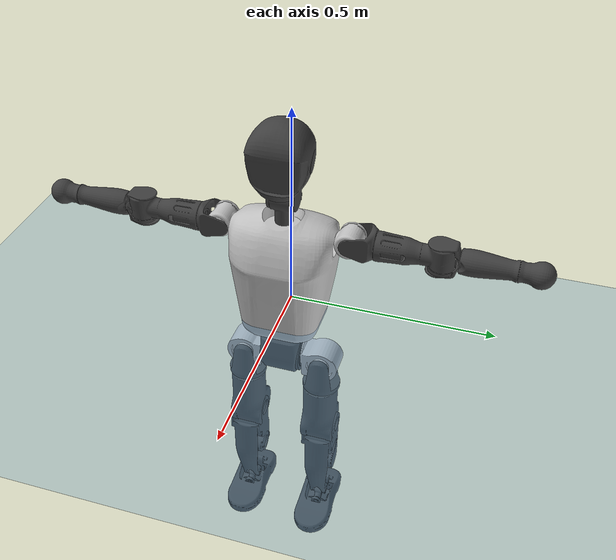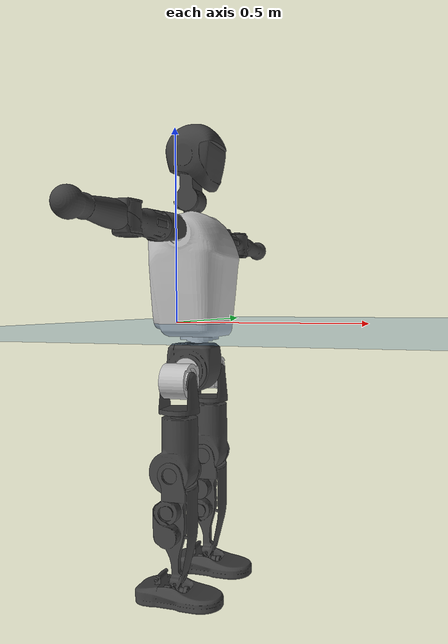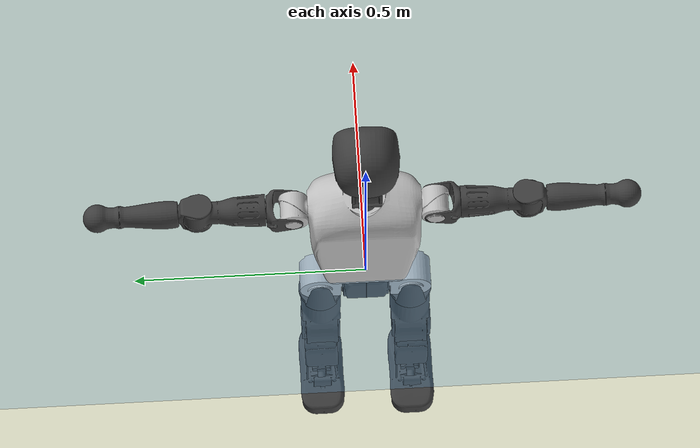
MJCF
<mujoco model="T1">
  <compiler angle="radian" assetdir="assets" balanceinertia="true" inertiafromgeom="false"/>

  <option timestep="0.005" density="1.2" viscosity="2e-05"/>

  <size nkey="1"/>

  <visual>
    <quality shadowsize="8192"/>
    <map shadowclip="0.5"/>
  </visual>

  <default>
    <default class="/">
      <joint armature="0.01" damping="0.01" frictionloss="0.1"/>
      <geom contype="0" conaffinity="0" group="1" solref="-1000 -80"/>
      <site size="0.01 0.005 0.005" group="5"/>
      <general forcelimited="true" biastype="affine" gainprm="25" biasprm="0 -25 -0.6"/>
      <default class="t1">
        <geom rgba="0.25 0.25 0.25 1"/>
        <default class="visual">
          <geom type="mesh" group="2"/>
        </default>
        <default class="collision">
          <geom group="3"/>
        </default>
        <default class="foot">
          <geom size="0.1115 0.05 0.015" type="box" condim="6" group="4" priority="1" solimp="0.015 1 0.015"/>
        </default>
        <default class="reward_collision_sphere">
          <geom group="5" rgba="1 0 0 1"/>
        </default>
      </default>
    </default>
  </default>

  <asset>
    <texture type="skybox" colorspace="auto" name="//unnamed_texture_0" builtin="gradient" rgb1="0.95 0.95 0.95" rgb2="0.95 0.95 0.95" width="100" height="600"/>
    <texture type="2d" colorspace="auto" name="texplane" builtin="checker" rgb1="0.345 0.575 0.748" rgb2="0.345 0.575 0.748" markrgb="1 1 1" width="512" height="512"/>
    <material name="MatPlane" class="/" texture="texplane" texuniform="true" texrepeat="2 2" specular="0.9"/>
    <mesh name="Trunk" class="/" file="Trunk.stl"/>
    <mesh name="H1" class="/" file="H1.stl"/>
    <mesh name="H2" class="/" file="H2.stl"/>
    <mesh name="AL1" class="/" file="AL1.stl"/>
    <mesh name="AL2" class="/" file="AL2.stl"/>
    <mesh name="AL3" class="/" file="AL3.stl"/>
    <mesh name="left_hand_link" class="/" file="left_hand_link.stl"/>
    <mesh name="AR1" class="/" file="AR1.stl"/>
    <mesh name="AR2" class="/" file="AR2.stl"/>
    <mesh name="AR3" class="/" file="AR3.stl"/>
    <mesh name="right_hand_link" class="/" file="right_hand_link.stl"/>
    <mesh name="Waist" class="/" file="Waist.stl"/>
    <mesh name="Hip_Pitch_Left" class="/" file="Hip_Pitch_Left.stl"/>
    <mesh name="Hip_Roll_Left" class="/" file="Hip_Roll_Left.stl"/>
    <mesh name="Hip_Yaw_Left" class="/" file="Hip_Yaw_Left.stl"/>
    <mesh name="Shank_Left" class="/" file="Shank_Left.stl"/>
    <mesh name="Ankle_Cross_Left" class="/" file="Ankle_Cross_Left.stl"/>
    <mesh name="left_foot_link" class="/" file="left_foot_link.stl"/>
    <mesh name="Hip_Pitch_Right" class="/" file="Hip_Pitch_Right.stl"/>
    <mesh name="Hip_Roll_Right" class="/" file="Hip_Roll_Right.stl"/>
    <mesh name="Hip_Yaw_Right" class="/" file="Hip_Yaw_Right.stl"/>
    <mesh name="Shank_Right" class="/" file="Shank_Right.stl"/>
    <mesh name="Ankle_Cross_Right" class="/" file="Ankle_Cross_Right.stl"/>
    <mesh name="right_foot_link" class="/" file="right_foot_link.stl"/>
  </asset>

  <worldbody>
    <geom name="floor" class="/" size="100 100 0.125" type="plane" group="0" material="MatPlane"/>
    <light name="toplight_shadow" class="/" pos="0 0 5" dir="0.0990148 0.0990148 -0.990148" type="directional" ambient="0.04 0.04 0.04" diffuse="0.55 0.55 0.55" specular="0.12 0.12 0.12"/>
    <light name="toplight_fill" class="/" pos="0 0 5" dir="0.0990148 0.0990148 -0.990148" type="directional" castshadow="false" ambient="0.04 0.04 0.04" diffuse="0.3 0.3 0.3" specular="0.08 0.08 0.08"/>
    <body name="trunk" childclass="t1" pos="0.00153634 -0.00033723 -0.000396214" quat="1 -0.000255755 -0.000376135 -0.000192557">
      <inertial pos="0.0418569 -0.000232602 0.108485" quat="0.999955 0.00306273 -0.00882774 0.00145331" mass="9.50319" diaginertia="0.0251495 0.0610292 0.0676208"/>
      <joint name="//unnamed_joint_0" type="free" armature="0" damping="0" frictionloss="0"/>
      <geom name="//unnamed_geom_1" class="visual" rgba="0.76 0.76 0.76 1" mesh="Trunk"/>
      <geom name="//unnamed_geom_2" class="collision" size="0.0689737 0.0919649 0.137947" pos="0.0460279 0 0.124433" type="box"/>
      <geom name="//unnamed_geom_3" class="reward_collision_sphere" size="0.10576" pos="0.0460279 0 0.103694"/>
      <geom name="//unnamed_geom_4" class="reward_collision_sphere" size="0.0137947" pos="0.0460279 0.0811643 0"/>
      <geom name="//unnamed_geom_5" class="reward_collision_sphere" size="0.0137947" pos="0.0460279 -0.0811643 0"/>
      <geom name="//unnamed_geom_6" class="reward_collision_sphere" size="0.0137947" pos="0.0460279 0.102172 0.186649"/>
      <geom name="//unnamed_geom_7" class="reward_collision_sphere" size="0.0137947" pos="0.0460279 -0.102172 0.186649"/>
      <site name="imu" pos="-0.0133588 0.000168891 0.00970605" size="0.00919649"/>
      <camera name="track" pos="0 -1.90975 0" quat="0.707107 0.707107 0 0" mode="trackcom"/>
      <camera name="ego_camera" pos="0.0935902 0 0.435515" quat="-0.5 -0.5 0.5 0.5"/>
      <body name="H1" pos="0.0449623 -0.00293882 0.249133" quat="1 -0.000410092 0.000355559 -7.2344e-05">
        <inertial pos="-0.00250146 -0.00215591 0.0591805" quat="0.757541 -0.0109917 -0.00712826 0.652656" mass="0.353083" diaginertia="6.42521e-05 0.000170558 0.00017819"/>
        <joint name="AAHead_yaw" pos="0 0 0" axis="-0.000404455 0.0136434 0.999907" range="-1.58053 1.55813" armature="0.0102493" damping="0.00596474" frictionloss="0.0957037"/>
        <geom name="//unnamed_geom_8" class="visual" mesh="H1"/>
        <body name="H2" pos="-0.00137417 -0.000544094 0.0639195" quat="0.999999 -0.000364904 0.000727207 -0.000759034">
          <inertial pos="0.00545989 -0.00171229 0.102026" quat="0.988195 0.104541 -0.0795614 -0.0788212" mass="0.510803" diaginertia="0.00054893 0.00155089 0.00210651"/>
          <joint name="Head_pitch" pos="0 0 0" axis="0.000239112 -1 -0.00010108" range="-1.2422 0.347957" armature="0.00988761" damping="0.00980801" frictionloss="0.0923365"/>
          <geom name="//unnamed_geom_9" class="visual" mesh="H2"/>
          <geom name="//unnamed_geom_10" class="collision" size="0.0735719" pos="0.00767132 0 0.114063"/>
          <geom name="//unnamed_geom_11" class="reward_collision_sphere" size="0.0827684" pos="0.0153426 0 0.103694"/>
        </body>
      </body>
      <body name="AL1" pos="0.0456095 0.104831 0.228389" quat="1 1.03302e-05 0.000467416 7.68361e-06">
        <inertial pos="-0.00311515 0.045495 -0.00217768" quat="0.504162 0.496552 -0.507393 0.491742" mass="0.418843" diaginertia="0.000372151 0.00104932 0.000352192"/>
        <joint name="Left_Shoulder_Pitch" pos="0 0 0" axis="-0.00449826 0.999978 0.00492313" stiffness="0.0113957" range="-3.30348 1.21626" armature="0.00985242" damping="0.00590894" frictionloss="0.0840699"/>
        <geom name="//unnamed_geom_12" class="visual" rgba="0.76 0.76 0.76 1" mesh="AL1"/>
        <body name="AL2" pos="-0.00091842 0.0482681 0.00163927" quat="1 5.02886e-05 -5.42311e-05 1.65123e-05">
          <inertial pos="0.0030549 0.0372697 0.000446785" quat="0.487991 0.511726 -0.488001 0.511718" mass="0.125098" diaginertia="0.000113102 0.000292655 0.000215311"/>
          <joint name="Left_Shoulder_Roll" pos="0 0 0" axis="-1 -3.0699e-05 -0.000564871" range="-1.54135 1.68824" armature="0.00929322" damping="0.019887" frictionloss="0.0937182"/>
          <geom name="//unnamed_geom_13" class="visual" mesh="AL2"/>
          <body name="AL3" pos="0.00328405 0.0575836 -0.000576687" quat="1 3.31237e-05 -0.000721037 0.000293603">
            <inertial pos="7.98273e-05 0.0803183 0.00210162" quat="0.702649 0.711467 -0.00272568 -0.00960187" mass="0.792349" diaginertia="0.00347741 0.0100568 0.00073569"/>
            <joint name="Left_Elbow_Pitch" pos="0 0 0" axis="-0.00231449 -0.999994 -0.00262969" range="-2.27186 2.3157" armature="0.00801767" damping="0.00323078" frictionloss="0.0897058"/>
            <geom name="//unnamed_geom_14" class="visual" mesh="AL3"/>
            <geom name="//unnamed_geom_15" class="collision" size="0.0275895 0.0689737" pos="0 0.0477437 0" quat="0.707105 0.707108 0 0" type="cylinder"/>
            <geom name="//unnamed_geom_16" class="reward_collision_sphere" size="0.0331074"/>
            <body name="left_hand_link" pos="0.000337104 0.140757 -0.000111814" quat="0.999999 -0.0005864 -0.000683528 0.00056934">
              <inertial pos="0.0024559 0.102327 0.00126946" quat="0.709201 0.705005 0.00131897 -9.97094e-05" mass="0.250674" diaginertia="0.00216465 0.00649451 0.000250473"/>
              <joint name="Left_Elbow_Yaw" pos="0 0 0" axis="0.00278006 0.00204146 0.999994" range="-2.43016 -0.023194" armature="0.0102087" damping="0.0217552" frictionloss="0.10211"/>
              <geom name="//unnamed_geom_17" class="visual" mesh="left_hand_link"/>
              <geom name="//unnamed_geom_18" class="collision" size="0.0275895 0.0804693" pos="0 0.124134 0" quat="0.707105 0.707108 0 0" type="cylinder"/>
              <geom name="//unnamed_geom_19" class="reward_collision_sphere" size="0.0459825"/>
              <geom name="//unnamed_geom_20" class="reward_collision_sphere" size="0.0321877" pos="0 0.105036 0"/>
              <geom name="//unnamed_geom_21" class="reward_collision_sphere" size="0.0321877" pos="0 0.205298 0"/>
            </body>
          </body>
        </body>
      </body>
      <body name="AR1" pos="0.0452265 -0.10324 0.226954" quat="1 -0.000452714 0.000762373 -0.000269523">
        <inertial pos="-0.00059133 -0.0439537 8.21435e-05" quat="0.504854 0.495744 -0.504002 0.495319" mass="0.413788" diaginertia="0.000367065 0.0010336 0.000349743"/>
        <joint name="Right_Shoulder_Pitch" pos="0 0 0" axis="-0.00083537 -0.999997 0.0022491" stiffness="0.0128545" range="-1.218 3.29328" armature="0.00988906" damping="0" frictionloss="0.0872483"/>
        <geom name="//unnamed_geom_22" class="visual" rgba="0.76 0.76 0.76 1" mesh="AR1"/>
        <body name="AR2" pos="0.00120738 -0.0438105 -0.00263807" quat="1 9.79203e-05 3.50173e-05 -0.000372034">
          <inertial pos="0.00183093 -0.0341149 -0.00247176" quat="0.511628 0.488139 -0.511842 0.487827" mass="0.127411" diaginertia="0.000108786 0.000270319 0.000215705"/>
          <joint name="Right_Shoulder_Roll" pos="0 0 0" axis="-0.999881 0.0153839 0.000800978" range="-1.68729 1.58509" armature="0.00926809" damping="0.0217427" frictionloss="0.0896465"/>
          <geom name="//unnamed_geom_23" class="visual" mesh="AR2"/>
          <body name="AR3" pos="0.00120321 -0.056625 -0.000444121" quat="1 -0.000100473 -8.39916e-05 6.20264e-05">
            <inertial pos="-0.00301298 -0.0820444 -0.000459391" quat="0.707217 0.706987 -0.000541943 0.00358284" mass="0.790745" diaginertia="0.00344646 0.0101218 0.000766059"/>
            <joint name="Right_Elbow_Pitch" pos="0 0 0" axis="-0.000705831 0.999996 0.00255832" range="-2.27055 2.23796" armature="0.00930607" damping="0.0136275" frictionloss="0.0797085"/>
            <geom name="//unnamed_geom_24" class="visual" mesh="AR3"/>
            <geom name="//unnamed_geom_25" class="collision" size="0.0275895 0.0689737" pos="0 -0.0477437 0" quat="0.707105 0.707108 0 0" type="cylinder"/>
            <geom name="//unnamed_geom_26" class="reward_collision_sphere" size="0.0331074"/>
            <body name="right_hand_link" pos="0.000267079 -0.139219 -0.000721458" quat="1 0.000130917 0.000247389 -0.000229134">
              <inertial pos="0.000596273 -0.10358 0.00334048" quat="0.706262 0.70795 2.96332e-05 -6.37073e-06" mass="0.255759" diaginertia="0.00215689 0.0062997 0.000259396"/>
              <joint name="Right_Elbow_Yaw" pos="0 0 0" axis="-0.00232011 -0.00086736 0.999997" stiffness="0.00591979" range="0.021169 2.45184" armature="0.00903844" damping="0.00510805" frictionloss="0.0799516"/>
              <geom name="//unnamed_geom_27" class="visual" mesh="right_hand_link"/>
              <geom name="//unnamed_geom_28" class="collision" size="0.0275895 0.0804693" pos="0 -0.124134 0" quat="0.707105 0.707108 0 0" type="cylinder"/>
              <geom name="//unnamed_geom_29" class="reward_collision_sphere" size="0.0459825"/>
              <geom name="//unnamed_geom_30" class="reward_collision_sphere" size="0.0321877" pos="0 -0.105036 0"/>
              <geom name="//unnamed_geom_31" class="reward_collision_sphere" size="0.0321877" pos="0 -0.205298 0"/>
            </body>
          </body>
        </body>
      </body>
      <body name="Waist" pos="0.0484046 -0.000479922 -0.120527" quat="1 8.06511e-05 -0.00050947 -0.000396101">
        <inertial pos="0.00167781 -0.000462098 0.0072291" quat="0.983722 0.00273693 -0.179551 0.00674563" mass="1.95729" diaginertia="0.00146936 0.00414086 0.00585769"/>
        <joint name="Waist" pos="0 0 0" axis="-0.00572887 0.0104758 0.999929" range="-1.594 1.54835" armature="0.00912447" damping="0.00829475" frictionloss="0.0800331"/>
        <geom name="//unnamed_geom_32" class="visual" mesh="Waist"/>
        <body name="Hip_Pitch_Left" pos="0.00202882 0.0997634 0.000483509" quat="1 -0.000372809 -0.000248211 -0.000465677">
          <inertial pos="0.000885387 -0.00957413 -0.0194524" quat="0.97565 0.218877 0.0140974 0.000916422" mass="0.788885" diaginertia="0.000471263 0.00118686 0.00154715"/>
          <joint name="Left_Hip_Pitch" pos="0 0 0" axis="0.00128535 0.999997 -0.00191866" stiffness="0.00392499" range="-1.78837 1.57669" armature="0.00989652" damping="0.0216971" frictionloss="0.0924149"/>
          <geom name="//unnamed_geom_33" class="visual" rgba="0.76 0.76 0.76 1" mesh="Hip_Pitch_Left"/>
          <body name="Hip_Roll_Left" pos="0.00272851 -0.000663768 -0.0212172" quat="0.999999 0.00060081 -0.000874767 0.00104133">
            <inertial pos="0.00281703 0.000842103 -0.0556068" quat="0.706253 -0.00352672 -0.00576551 0.707927" mass="0.28125" diaginertia="0.000432797 0.00116411 0.000589735"/>
            <joint name="Left_Hip_Roll" pos="0 0 0" axis="-0.999905 -0.000889218 -0.0137608" range="-1.51379 0.210233" armature="0.00875075" damping="0.00243481" frictionloss="0.0928116"/>
            <geom name="//unnamed_geom_34" class="visual" mesh="Hip_Roll_Left"/>
            <geom name="//unnamed_geom_35" class="reward_collision_sphere" size="0.0505807"/>
            <body name="Hip_Yaw_Left" pos="0.00164435 -0.0011039 -0.0847679" quat="0.999999 0.000177841 0.000375117 0.00130171">
              <inertial pos="-0.00778914 0.000748604 -0.0919856" quat="0.700409 -0.0342107 -0.0324165 0.712184" mass="1.6925" diaginertia="0.00714627 0.020459 0.0031528"/>
              <joint name="Left_Hip_Yaw" pos="0 0 0" axis="-3.33694e-05 3.9991e-05 -1" range="-0.951317 1.05874" armature="0.00922926" damping="0.00629435" frictionloss="0.102674"/>
              <geom name="//unnamed_geom_36" class="visual" mesh="Hip_Yaw_Left"/>
              <geom name="//unnamed_geom_37" class="collision" size="0.0459825 0.0735719" type="cylinder"/>
              <body name="Shank_Left" pos="-0.0113465 0.00216938 -0.139158" quat="1 -4.54741e-05 3.99182e-05 8.61293e-05">
                <inertial pos="-0.00727662 -1.88039e-05 -0.129763" quat="0.998111 -0.000544994 -0.0299458 0.053641" mass="1.33461" diaginertia="0.00927021 0.0284994 0.00228922"/>
                <joint name="Left_Knee_Pitch" pos="0 0 0" axis="0.00469145 0.999946 0.00930863" range="0.0053679 2.38185" armature="0.00833702" damping="0.00777018" frictionloss="0.104345"/>
                <geom name="//unnamed_geom_38" class="visual" mesh="Shank_Left"/>
                <geom name="//unnamed_geom_39" class="collision" size="0.0459825 0.0689737" pos="0 0 -0.124433" type="cylinder"/>
                <geom name="//unnamed_geom_40" class="reward_collision_sphere" size="0.0597772"/>
                <body name="Ankle_Cross_Left" pos="0.00110058 0.000139846 -0.291194" quat="1 4.12753e-06 5.25625e-05 0.0001436">
                  <inertial pos="-0.00288275 -0.000776614 -0.00802983" quat="0.442602 0.552299 0.550182 0.443135" mass="0.0573681" diaginertia="7.81073e-06 2.05252e-05 1.35548e-05"/>
                  <joint name="Left_Ankle_Pitch" pos="0 0 0" axis="0.00519793 0.999963 -0.00691928" range="-0.872474 0.316016" armature="0.010444" damping="0.0135875" frictionloss="0.0910671"/>
                  <geom name="//unnamed_geom_41" class="visual" mesh="Ankle_Cross_Left"/>
                  <body name="left_foot_link" pos="0.0019202 -0.000445683 -0.012931" quat="1 1.79119e-05 -0.000156336 6.75928e-05">
                    <inertial pos="-0.00270815 0.00172231 -0.00952489" quat="-0.000288529 0.622798 0.00246373 0.782379" mass="0.537513" diaginertia="0.000709056 0.00186147 0.00253215"/>
                    <joint name="Left_Ankle_Roll" pos="0 0 0" axis="-0.999986 -0.00480417 0.00215822" range="-0.421984 0.432106" armature="0.00932178" damping="0.000617877" frictionloss="0.0955514"/>
                    <geom name="//unnamed_geom_42" class="visual" mesh="left_foot_link"/>
                    <geom name="left_foot" class="foot" size="0.101497 0.0445057 0.013863" pos="0.00767132 0 -0.0155541"/>
                    <geom name="//unnamed_geom_44" class="reward_collision_sphere" size="0.0478218" pos="0.00767132 0 -0.0155541"/>
                    <geom name="//unnamed_geom_45" class="reward_collision_sphere" size="0.0275895" pos="0.0728776 -0.0219621 -0.0155541"/>
                    <geom name="//unnamed_geom_46" class="reward_collision_sphere" size="0.0275895" pos="-0.0536993 -0.0219621 -0.0155541"/>
                    <site name="left_foot" class="foot" pos="0.00767132 0 -0.0155541" size="0.00919649"/>
                  </body>
                </body>
              </body>
            </body>
          </body>
        </body>
        <body name="Hip_Pitch_Right" pos="-0.000471293 -0.100448 -0.00120477" quat="1 -8.79545e-05 6.97069e-05 -3.38549e-05">
          <inertial pos="0.00103691 0.00734696 -0.0210739" quat="0.9725 -0.232361 0.0148566 -0.0056803" mass="0.789035" diaginertia="0.000463446 0.0011994 0.00150279"/>
          <joint name="Right_Hip_Pitch" pos="0 0 0" axis="-0.000987454 -0.999999 -0.00087377" range="-1.62199 1.85429" armature="0.00919659" damping="0.0198348" frictionloss="0.0797408"/>
          <geom name="//unnamed_geom_47" class="visual" rgba="0.76 0.76 0.76 1" mesh="Hip_Pitch_Right"/>
          <body name="Hip_Roll_Right" pos="0.00279097 0.000275381 -0.0215462" quat="1 0.000274562 0.000166058 -0.000110218">
            <inertial pos="0.0018488 -0.00257007 -0.0534547" quat="0.708023 -0.00834944 -0.0027482 0.706134" mass="0.290644" diaginertia="0.000451662 0.00117302 0.000619353"/>
            <joint name="Right_Hip_Roll" pos="0 0 0" axis="-0.999888 0.00383142 -0.014459" range="-0.205185 1.59308" armature="0.00849433" damping="0.00413838" frictionloss="0.0871342"/>
            <geom name="//unnamed_geom_48" class="visual" mesh="Hip_Roll_Right"/>
            <geom name="//unnamed_geom_49" class="reward_collision_sphere" size="0.0505807"/>
            <body name="Hip_Yaw_Right" pos="-0.000960751 -0.000244209 -0.0876316" quat="1 0.000371795 -0.000237642 -2.71147e-06">
              <inertial pos="-0.00431615 0.00210071 -0.0939123" quat="0.716617 -0.0420434 -0.0405264 0.695018" mass="1.69221" diaginertia="0.00692453 0.0201787 0.0031381"/>
              <joint name="Right_Hip_Yaw" pos="0 0 0" axis="-0.00209048 -0.00286161 -0.999994" stiffness="0.00117839" range="-0.989618 0.984155" armature="0.00974287" damping="0.0149312" frictionloss="0.0915188"/>
              <geom name="//unnamed_geom_50" class="visual" mesh="Hip_Yaw_Right"/>
              <geom name="//unnamed_geom_51" class="collision" size="0.0459825 0.0735719" type="cylinder"/>
              <body name="Shank_Right" pos="-0.00962725 -0.00282513 -0.137254" quat="1 -3.19255e-06 1.27503e-05 -0.000102063">
                <inertial pos="-0.00711399 0.00208898 -0.127733" quat="0.999022 -0.00850804 -0.0315415 -0.029804" mass="1.41694" diaginertia="0.00896349 0.0267843 0.00231954"/>
                <joint name="Right_Knee_Pitch" pos="0 0 0" axis="0.00627225 -0.999978 -0.00225193" range="-2.35802 0.00623947" armature="0.00916573" damping="0.00258844" frictionloss="0.0910396"/>
                <geom name="//unnamed_geom_52" class="visual" mesh="Shank_Right"/>
                <geom name="//unnamed_geom_53" class="collision" size="0.0459825 0.0689737" pos="0 0 -0.124433" type="cylinder"/>
                <geom name="//unnamed_geom_54" class="reward_collision_sphere" size="0.0597772"/>
                <body name="Ankle_Cross_Right" pos="-0.000963793 -0.00148829 -0.289685" quat="1 1.14194e-05 2.76898e-07 -5.29441e-05">
                  <inertial pos="-0.00196022 -0.00221774 -0.0092299" quat="0.451895 0.554065 0.54819 0.433924" mass="0.0568025" diaginertia="7.70614e-06 1.90621e-05 1.3071e-05"/>
                  <joint name="Right_Ankle_Pitch" pos="0 0 0" axis="-0.00810913 -0.999965 -0.00192655" range="-0.34052 0.868495" armature="0.00996431" damping="0" frictionloss="0.089399"/>
                  <geom name="//unnamed_geom_55" class="visual" mesh="Ankle_Cross_Right"/>
                  <body name="right_foot_link" pos="-0.000437397 -0.00157097 -0.00965396" quat="1 1.9788e-05 4.32844e-05 2.27617e-05">
                    <inertial pos="0.000933369 -0.000300776 -0.00689611" quat="0.00480716 0.621335 -0.00346895 0.783523" mass="0.538896" diaginertia="0.000737658 0.0018737 0.00260107"/>
                    <joint name="Right_Ankle_Roll" pos="0 0 0" axis="-0.99999 0.000308922 -0.00454182" stiffness="0.00195082" range="-0.452162 0.411229" armature="0.00948131" damping="0.0133241" frictionloss="0.0846937"/>
                    <geom name="//unnamed_geom_56" class="visual" mesh="right_foot_link"/>
                    <geom name="right_foot" class="foot" size="0.104368 0.0444273 0.0139186" pos="0.00767132 0 -0.0155541"/>
                    <geom name="//unnamed_geom_58" class="reward_collision_sphere" size="0.036786"/>
                    <geom name="//unnamed_geom_59" class="reward_collision_sphere" size="0.0275895" pos="0.00767132 0 -0.0155541"/>
                    <geom name="//unnamed_geom_60" class="reward_collision_sphere" size="0.0275895" pos="0.0728776 0.0219621 -0.0155541"/>
                    <geom name="//unnamed_geom_61" class="reward_collision_sphere" size="0.0275895" pos="-0.0536993 0.0219621 -0.0155541"/>
                    <site name="right_foot" class="foot" pos="0.00767132 0 -0.0155541" size="0.00919649"/>
                  </body>
                </body>
              </body>
            </body>
          </body>
        </body>
      </body>
    </body>
  </worldbody>

  <contact>
    <pair class="/" geom1="floor" geom2="left_foot" name="//unnamed_contact_0"/>
    <pair class="/" geom1="floor" geom2="right_foot" name="//unnamed_contact_1"/>
  </contact>

  <actuator>
    <general name="AAHead_yaw" class="/" joint="AAHead_yaw" forcerange="-6.86413 6.86413" gainprm="22.6887" biasprm="0 -22.6887 -0.50972"/>
    <general name="Head_pitch" class="/" joint="Head_pitch" forcerange="-6.18815 6.18815" gainprm="22.6887" biasprm="0 -22.6887 -0.50972"/>
    <general name="Left_Shoulder_Pitch" class="/" joint="Left_Shoulder_Pitch" forcerange="-16.4565 16.4565" gainprm="22.6887" biasprm="0 -22.6887 -0.50972"/>
    <general name="Left_Shoulder_Roll" class="/" joint="Left_Shoulder_Roll" forcerange="-16.2071 16.2071" gainprm="22.6887" biasprm="0 -22.6887 -0.50972"/>
    <general name="Left_Elbow_Pitch" class="/" joint="Left_Elbow_Pitch" forcerange="-17.8332 17.8332" gainprm="22.6887" biasprm="0 -22.6887 -0.50972"/>
    <general name="Left_Elbow_Yaw" class="/" joint="Left_Elbow_Yaw" forcerange="-17.2847 17.2847" gainprm="22.6887" biasprm="0 -22.6887 -0.50972"/>
    <general name="Right_Shoulder_Pitch" class="/" joint="Right_Shoulder_Pitch" forcerange="-16.6555 16.6555" gainprm="22.6887" biasprm="0 -22.6887 -0.50972"/>
    <general name="Right_Shoulder_Roll" class="/" joint="Right_Shoulder_Roll" forcerange="-17.1748 17.1748" gainprm="22.6887" biasprm="0 -22.6887 -0.50972"/>
    <general name="Right_Elbow_Pitch" class="/" joint="Right_Elbow_Pitch" forcerange="-16.6026 16.6026" gainprm="22.6887" biasprm="0 -22.6887 -0.50972"/>
    <general name="Right_Elbow_Yaw" class="/" joint="Right_Elbow_Yaw" forcerange="-15.8481 15.8481" gainprm="22.6887" biasprm="0 -22.6887 -0.50972"/>
    <general name="Waist" class="/" joint="Waist" forcerange="-28.5843 28.5843" gainprm="22.6887" biasprm="0 -22.6887 -0.50972"/>
    <general name="Left_Hip_Pitch" class="/" joint="Left_Hip_Pitch" forcerange="-40.9761 40.9761" gainprm="22.6887" biasprm="0 -22.6887 -0.50972"/>
    <general name="Left_Hip_Roll" class="/" joint="Left_Hip_Roll" forcerange="-26.559 26.559" gainprm="22.6887" biasprm="0 -22.6887 -0.50972"/>
    <general name="Left_Hip_Yaw" class="/" joint="Left_Hip_Yaw" forcerange="-25.5529 25.5529" gainprm="22.6887" biasprm="0 -22.6887 -0.50972"/>
    <general name="Left_Knee_Pitch" class="/" joint="Left_Knee_Pitch" forcerange="-55.263 55.263" gainprm="22.6887" biasprm="0 -22.6887 -0.50972"/>
    <general name="Left_Ankle_Pitch" class="/" joint="Left_Ankle_Pitch" forcerange="-17.956 17.956" gainprm="22.6887" biasprm="0 -22.6887 -0.50972"/>
    <general name="Left_Ankle_Roll" class="/" joint="Left_Ankle_Roll" forcerange="-13.5262 13.5262" gainprm="22.6887" biasprm="0 -22.6887 -0.50972"/>
    <general name="Right_Hip_Pitch" class="/" joint="Right_Hip_Pitch" forcerange="-41.0788 41.0788" gainprm="22.6887" biasprm="0 -22.6887 -0.50972"/>
    <general name="Right_Hip_Roll" class="/" joint="Right_Hip_Roll" forcerange="-28.4317 28.4317" gainprm="22.6887" biasprm="0 -22.6887 -0.50972"/>
    <general name="Right_Hip_Yaw" class="/" joint="Right_Hip_Yaw" forcerange="-28.2849 28.2849" gainprm="22.6887" biasprm="0 -22.6887 -0.50972"/>
    <general name="Right_Knee_Pitch" class="/" joint="Right_Knee_Pitch" forcerange="-50.7263 50.7263" gainprm="22.6887" biasprm="0 -22.6887 -0.50972"/>
    <general name="Right_Ankle_Pitch" class="/" joint="Right_Ankle_Pitch" forcerange="-16.6733 16.6733" gainprm="22.6887" biasprm="0 -22.6887 -0.50972"/>
    <general name="Right_Ankle_Roll" class="/" joint="Right_Ankle_Roll" forcerange="-13.4347 13.4347" gainprm="22.6887" biasprm="0 -22.6887 -0.50972"/>
  </actuator>

  <sensor>
    <gyro site="imu" name="imu_angular_velocity"/>
    <velocimeter site="imu" name="imu_linear_velocity"/>
    <framelinvel objtype="site" objname="left_foot" name="left_foot_global_linear_velocity"/>
    <framelinvel objtype="site" objname="right_foot" name="right_foot_global_linear_velocity"/>
  </sensor>

  <keyframe>
    <key name="home" qpos="0 0 0.6385 1 0 0 0 0 0 0 1.4 0 -0.4 0 -1.4 0 0.4 0 -0.4 0 0 0.8 -0.4 0 0.4 0 0 -0.8 0.4 0"/>
  </keyframe>
</mujoco>
